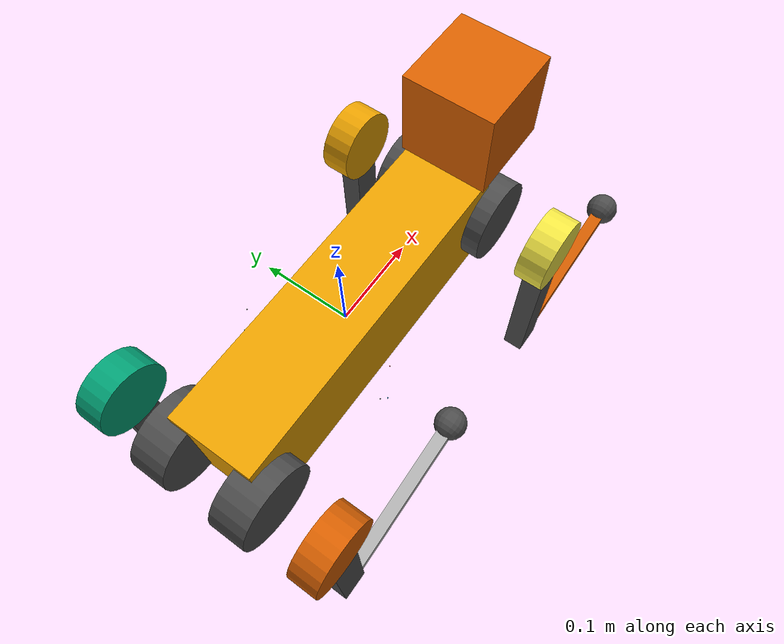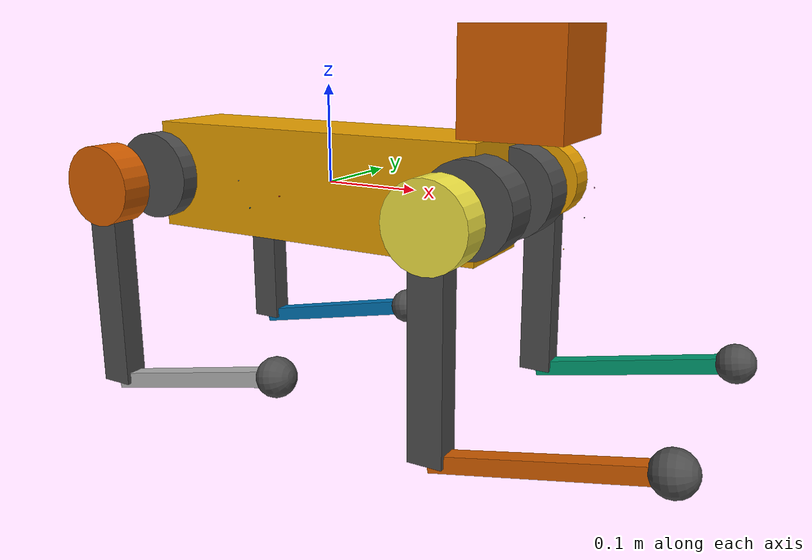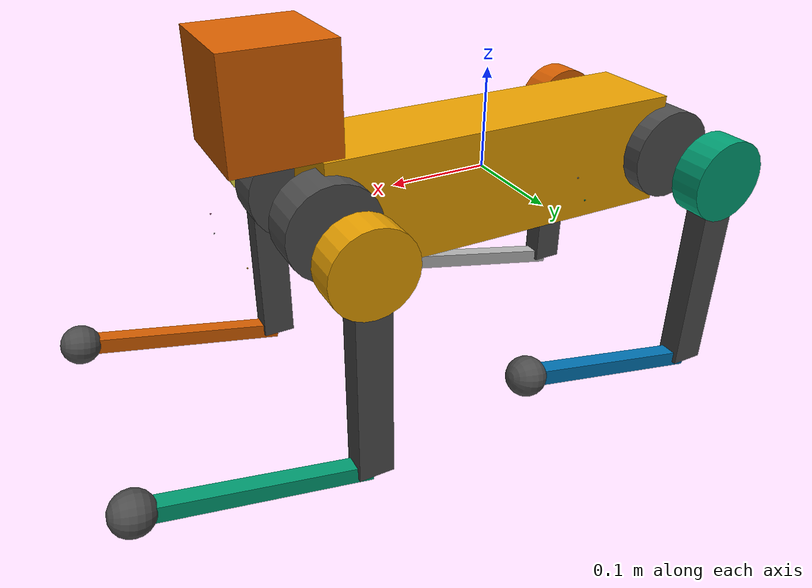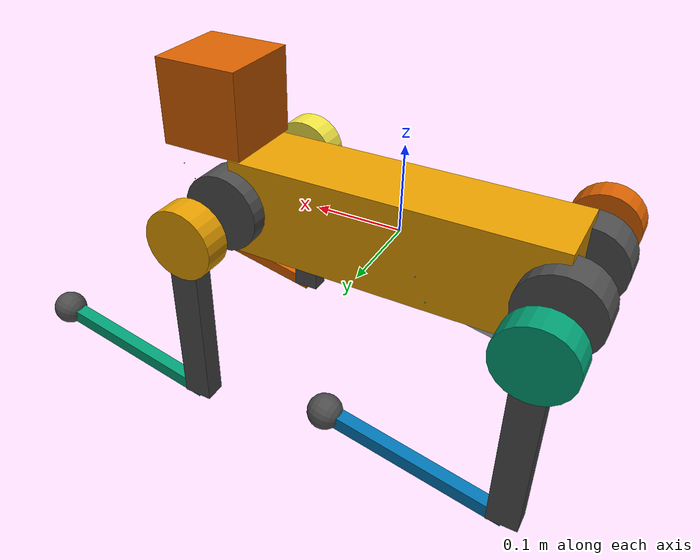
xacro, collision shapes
<?xml version="1.0"?>
<robot name="go1_standalone"
       xmlns:xacro="http://ros.org/wiki/xacro">

  <!-- Defines the kobuki component tag. -->
  <xacro:include filename="$(find go1_description)/urdf/go1.urdf" />

  <!-- Hokuyo Laser -->
  <xacro:include filename="$(find go1_description)/xacro/hokuyo.xacro"/>
  <xacro:laser name="base_scan" parent="trunk" xyz="0.22 0 0.11" rpy="0 0 0" meshes="package://gazebo_plugins/test/multi_robot_scenario/meshes/laser"/>

  <!-- Real Sense -->

</robot>

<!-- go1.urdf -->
<!-- |    This document was autogenerated by xacro from robot.xacro                    | -->
<!-- |    EDITING THIS FILE BY HAND IS NOT RECOMMENDED                                 | -->
<robot name="go1" xmlns:xacro="http://www.ros.org/wiki/xacro">
  <material name="black">
    <color rgba="0.0 0.0 0.0 1.0"/>
  </material>
  <material name="blue">
    <color rgba="0.0 0.0 0.8 1.0"/>
  </material>
  <material name="green">
    <color rgba="0.0 0.8 0.0 1.0"/>
  </material>
  <material name="grey">
    <color rgba="0.2 0.2 0.2 1.0"/>
  </material>
  <material name="silver">
    <color rgba="0.913725490196 0.913725490196 0.847058823529 1.0"/>
  </material>
  <material name="orange">
    <color rgba="1.0 0.423529411765 0.0392156862745 1.0"/>
  </material>
  <material name="brown">
    <color rgba="0.870588235294 0.811764705882 0.764705882353 1.0"/>
  </material>
  <material name="red">
    <color rgba="0.8 0.0 0.0 1.0"/>
  </material>
  <material name="white">
    <color rgba="1.0 1.0 1.0 1.0"/>
  </material>
  <!-- ros_control plugin -->
  <gazebo>
    <plugin filename="libgazebo_ros_control.so" name="gazebo_ros_control">
    </plugin>
  </gazebo>
  <!-- Show the trajectory of trunk center. -->
  <!-- Show the trajectory of foot. You can add another trajectory about another foot. -->
  <gazebo>
    <plugin filename="libgazebo_ros_force.so" name="gazebo_ros_force">
      <bodyName>trunk</bodyName>
      <topicName>/apply_force/trunk</topicName>
    </plugin>
  </gazebo>
  <gazebo reference="imu_link">
    <gravity>true</gravity>
    <sensor name="imu_sensor" type="imu">
      <always_on>true</always_on>
      <update_rate>1000</update_rate>
      <visualize>true</visualize>
      <topic>__default_topic__</topic>
      <plugin filename="libgazebo_ros_imu_sensor.so" name="imu_plugin">
        <frameName>imu_link</frameName>
        <topicName>imu/data</topicName>
        <bodyName>imu_link</bodyName>
        <updateRateHZ>1000.0</updateRateHZ>
        <gaussianNoise>0.0</gaussianNoise>
        <xyzOffset>0 0 0</xyzOffset>
        <rpyOffset>0 0 0</rpyOffset>
        <accelDrift>0.005 0.005 0.005</accelDrift>
        <accelGaussianNoise>0.005 0.005 0.005</accelGaussianNoise>
        <rateDrift>0.005 0.005 0.005 </rateDrift>
        <rateGaussianNoise>0.005 0.005 0.005 </rateGaussianNoise>
        <headingDrift>0.005</headingDrift>
        <headingGaussianNoise>0.005</headingGaussianNoise>
      </plugin>
      <pose>0 0 0 0 0 0</pose>
    </sensor>
  </gazebo>
  <!-- Depth camera -->
  <gazebo reference="depthCamera_link_left">
    <sensor name="camera_link_camera" type="depth">
      <update_rate>20</update_rate>
      <camera>
        <horizontal_fov>1.047198</horizontal_fov>
        <image>
          <width>640</width>
          <height>480</height>
          <format>R8G8B8</format>
        </image>
        <clip>
          <near>0.05</near>
          <far>3</far>
        </clip>
      </camera>
      <plugin filename="libgazebo_ros_openni_kinect.so" name="camera_link_controller">
        <baseline>0.2</baseline>
        <alwaysOn>true</alwaysOn>
        <updateRate>1.0</updateRate>
        <cameraName>camera_link_ir</cameraName>
        <imageTopicName>/camera_link/color/image_raw</imageTopicName>
        <cameraInfoTopicName>/camera_link/color/camera_info</cameraInfoTopicName>
        <depthImageTopicName>/camera_link/depth/image_raw</depthImageTopicName>
        <depthImageInfoTopicName>/camera_link/depth/camera_info</depthImageInfoTopicName>
        <pointCloudTopicName>/camera_link/depth/points</pointCloudTopicName>
        <frameName>depthCamera_link_left</frameName>
        <pointCloudCutoff>0.5</pointCloudCutoff>
        <pointCloudCutoffMax>3.0</pointCloudCutoffMax>
        <distortionK1>0.00000001</distortionK1>
        <distortionK2>0.00000001</distortionK2>
        <distortionK3>0.00000001</distortionK3>
        <distortionT1>0.00000001</distortionT1>
        <distortionT2>0.00000001</distortionT2>
        <CxPrime>0</CxPrime>
        <Cx>0</Cx>
        <Cy>0</Cy>
        <focalLength>0</focalLength>
        <hackBaseline>0</hackBaseline>
      </plugin>
    </sensor>
  </gazebo>
  <!-- Foot contacts. -->
  <gazebo reference="FR_calf">
    <sensor name="FR_foot_contact" type="contact">
      <update_rate>100</update_rate>
      <plugin filename="libunitreeFootContactPlugin.so" name="contactPlugin"/>
      <contact>
        <collision>FR_calf_fixed_joint_lump__FR_foot_collision_1</collision>
      </contact>
    </sensor>
  </gazebo>
  <gazebo reference="FL_calf">
    <sensor name="FL_foot_contact" type="contact">
      <update_rate>100</update_rate>
      <plugin filename="libunitreeFootContactPlugin.so" name="contactPlugin"/>
      <contact>
        <collision>FL_calf_fixed_joint_lump__FL_foot_collision_1</collision>
      </contact>
    </sensor>
  </gazebo>
  <gazebo reference="RR_calf">
    <sensor name="RR_foot_contact" type="contact">
      <update_rate>100</update_rate>
      <plugin filename="libunitreeFootContactPlugin.so" name="contactPlugin"/>
      <contact>
        <collision>RR_calf_fixed_joint_lump__RR_foot_collision_1</collision>
      </contact>
    </sensor>
  </gazebo>
  <gazebo reference="RL_calf">
    <sensor name="RL_foot_contact" type="contact">
      <update_rate>100</update_rate>
      <plugin filename="libunitreeFootContactPlugin.so" name="contactPlugin"/>
      <contact>
        <collision>RL_calf_fixed_joint_lump__RL_foot_collision_1</collision>
      </contact>
    </sensor>
  </gazebo>
  <!-- Visualization of Foot contacts. -->
  <gazebo reference="FR_foot">
    <visual>
      <plugin filename="libunitreeDrawForcePlugin.so" name="drawForcePlugin">
        <topicName>FR_foot_contact</topicName>
      </plugin>
    </visual>
  </gazebo>
  <gazebo reference="FL_foot">
    <visual>
      <plugin filename="libunitreeDrawForcePlugin.so" name="drawForcePlugin">
        <topicName>FL_foot_contact</topicName>
      </plugin>
    </visual>
  </gazebo>
  <gazebo reference="RR_foot">
    <visual>
      <plugin filename="libunitreeDrawForcePlugin.so" name="drawForcePlugin">
        <topicName>RR_foot_contact</topicName>
      </plugin>
    </visual>
  </gazebo>
  <gazebo reference="RL_foot">
    <visual>
      <plugin filename="libunitreeDrawForcePlugin.so" name="drawForcePlugin">
        <topicName>RL_foot_contact</topicName>
      </plugin>
    </visual>
  </gazebo>
  <gazebo reference="base">
    <material>Gazebo/Green</material>
    <turnGravityOff>false</turnGravityOff>
  </gazebo>
  <gazebo reference="trunk">
    <mu1>0.2</mu1>
    <mu2>0.2</mu2>
    <kp value="1000000.0"/>
    <kd value="1.0"/>
  </gazebo>
  <gazebo reference="stick_link">
    <mu1>0.2</mu1>
    <mu2>0.2</mu2>
    <material>Gazebo/White</material>
  </gazebo>
  <gazebo reference="imu_link">
    <mu1>0.2</mu1>
    <mu2>0.2</mu2>
    <material>Gazebo/Red</material>
  </gazebo>
  <!-- FL leg -->
  <gazebo reference="FL_hip">
    <mu1>0.2</mu1>
    <mu2>0.2</mu2>
    <material>Gazebo/DarkGrey</material>
  </gazebo>
  <gazebo reference="FL_thigh">
    <mu1>0.2</mu1>
    <mu2>0.2</mu2>
    <self_collide>1</self_collide>
    <material>Gazebo/DarkGrey</material>
    <kp value="1000000.0"/>
    <kd value="1.0"/>
  </gazebo>
  <gazebo reference="FL_calf">
    <mu1>0.2</mu1>
    <mu2>0.2</mu2>
    <self_collide>1</self_collide>
  </gazebo>
  <gazebo reference="FL_foot">
    <mu1>0.6</mu1>
    <mu2>0.6</mu2>
    <self_collide>1</self_collide>
    <material>Gazebo/DarkGrey</material>
    <kp value="1000000.0"/>
    <kd value="1.0"/>
  </gazebo>
  <!-- FR leg -->
  <gazebo reference="FR_hip">
    <mu1>0.2</mu1>
    <mu2>0.2</mu2>
    <material>Gazebo/DarkGrey</material>
  </gazebo>
  <gazebo reference="FR_thigh">
    <mu1>0.2</mu1>
    <mu2>0.2</mu2>
    <self_collide>1</self_collide>
    <material>Gazebo/DarkGrey</material>
    <kp value="1000000.0"/>
    <kd value="1.0"/>
  </gazebo>
  <gazebo reference="FR_calf">
    <mu1>0.2</mu1>
    <mu2>0.2</mu2>
    <self_collide>1</self_collide>
  </gazebo>
  <gazebo reference="FR_foot">
    <mu1>0.6</mu1>
    <mu2>0.6</mu2>
    <self_collide>1</self_collide>
    <material>Gazebo/DarkGrey</material>
    <kp value="1000000.0"/>
    <kd value="1.0"/>
  </gazebo>
  <!-- RL leg -->
  <gazebo reference="RL_hip">
    <mu1>0.2</mu1>
    <mu2>0.2</mu2>
    <material>Gazebo/DarkGrey</material>
  </gazebo>
  <gazebo reference="RL_thigh">
    <mu1>0.2</mu1>
    <mu2>0.2</mu2>
    <self_collide>1</self_collide>
    <material>Gazebo/DarkGrey</material>
    <kp value="1000000.0"/>
    <kd value="1.0"/>
  </gazebo>
  <gazebo reference="RL_calf">
    <mu1>0.2</mu1>
    <mu2>0.2</mu2>
    <self_collide>1</self_collide>
  </gazebo>
  <gazebo reference="RL_foot">
    <mu1>0.6</mu1>
    <mu2>0.6</mu2>
    <self_collide>1</self_collide>
    <material>Gazebo/DarkGrey</material>
    <kp value="1000000.0"/>
    <kd value="1.0"/>
  </gazebo>
  <!-- RR leg -->
  <gazebo reference="RR_hip">
    <mu1>0.2</mu1>
    <mu2>0.2</mu2>
    <material>Gazebo/DarkGrey</material>
  </gazebo>
  <gazebo reference="RR_thigh">
    <mu1>0.2</mu1>
    <mu2>0.2</mu2>
    <self_collide>1</self_collide>
    <material>Gazebo/DarkGrey</material>
    <kp value="1000000.0"/>
    <kd value="1.0"/>
  </gazebo>
  <gazebo reference="RR_calf">
    <mu1>0.2</mu1>
    <mu2>0.2</mu2>
    <self_collide>1</self_collide>
  </gazebo>
  <gazebo reference="RR_foot">
    <mu1>0.6</mu1>
    <mu2>0.6</mu2>
    <self_collide>1</self_collide>
    <material>Gazebo/DarkGrey</material>
    <kp value="1000000.0"/>
    <kd value="1.0"/>
  </gazebo>
  <!-- Debug mode will hung up the robot, use "true" or "false" to switch it. -->
  <link name="trunk">
    <visual>
      <origin rpy="0 0 0" xyz="0 0 0"/>
      <geometry>
        <mesh filename="package://go1_description/meshes/trunk.dae" scale="1 1 1"/>
      </geometry>
    </visual>
    <collision>
      <origin rpy="0 0 0" xyz="0 0 0"/>
      <geometry>
        <box size="0.3762 0.0935 0.114"/>
      </geometry>
    </collision>
    <inertial>
      <origin rpy="0 0 0" xyz="0.0223 0.002 -0.0005"/>
      <mass value="5.204"/>
      <inertia ixx="0.0168352186" ixy="0.0004636141" ixz="0.0002367952" iyy="0.0656071082" iyz="3.6671e-05" izz="0.0742720659"/>
    </inertial>
  </link>
  <joint name="imu_joint" type="fixed">
    <parent link="trunk"/>
    <child link="imu_link"/>
    <origin rpy="0 0 0" xyz="-0.01592 -0.06659 -0.00617"/>
  </joint>
  <link name="imu_link">
    <inertial>
      <mass value="0.001"/>
      <origin rpy="0 0 0" xyz="0 0 0"/>
      <inertia ixx="0.0001" ixy="0" ixz="0" iyy="0.0001" iyz="0" izz="0.0001"/>
    </inertial>
    <visual>
      <origin rpy="0 0 0" xyz="0 0 0"/>
      <geometry>
        <box size="0.001 0.001 0.001"/>
      </geometry>
    </visual>
    <collision>
      <origin rpy="0 0 0" xyz="0 0 0"/>
      <geometry>
        <box size=".001 .001 .001"/>
      </geometry>
    </collision>
  </link>
  <joint name="FR_hip_joint" type="revolute">
    <origin rpy="0 0 0" xyz="0.1881 -0.04675 0"/>
    <parent link="trunk"/>
    <child link="FR_hip"/>
    <axis xyz="1 0 0"/>
    <dynamics damping="0.01" friction="0.2"/>
    <limit effort="23.7" lower="-1.0471975512" upper="1.0471975512" velocity="30.1"/>
  </joint>
  <link name="FR_hip">
    <visual>
      <origin rpy="3.14159265359 0 0" xyz="0 0 0"/>
      <geometry>
        <mesh filename="package://go1_description/meshes/hip.dae" scale="1 1 1"/>
      </geometry>
    </visual>
    <collision>
      <origin rpy="1.57079632679 0 0" xyz="0 0 0"/>
      <geometry>
        <cylinder length="0.04" radius="0.046"/>
      </geometry>
    </collision>
    <inertial>
      <origin rpy="0 0 0" xyz="-0.00541 0.00074 6e-06"/>
      <mass value="0.591"/>
      <inertia ixx="0.000374268192" ixy="-3.6844422e-05" ixz="-9.86754e-07" iyy="0.000635923669" iyz="1.172894e-06" izz="0.000457647394"/>
    </inertial>
  </link>
  <joint name="FR_hip_fixed" type="fixed">
    <origin rpy="0 0 0" xyz="0 -0.08 0"/>
    <parent link="FR_hip"/>
    <child link="FR_thigh_shoulder"/>
  </joint>
  <!-- this link is only for collision -->
  <link name="FR_thigh_shoulder">
    <collision>
      <origin rpy="1.57079632679 0 0" xyz="0 0 0"/>
      <geometry>
        <cylinder length="0.032" radius="0.041"/>
      </geometry>
    </collision>
  </link>
  <joint name="FR_thigh_joint" type="revolute">
    <origin rpy="0 0 0" xyz="0 -0.08 0"/>
    <parent link="FR_hip"/>
    <child link="FR_thigh"/>
    <axis xyz="0 1 0"/>
    <dynamics damping="0.01" friction="0.2"/>
    <limit effort="23.7" lower="-0.663225115758" upper="2.96705972839" velocity="30.1"/>
  </joint>
  <link name="FR_thigh">
    <visual>
      <origin rpy="0 0 0" xyz="0 0 0"/>
      <geometry>
        <mesh filename="package://go1_description/meshes/thigh_mirror.dae" scale="1 1 1"/>
      </geometry>
    </visual>
    <collision>
      <origin rpy="0 1.57079632679 0" xyz="0 0 -0.1065"/>
      <geometry>
        <box size="0.213 0.0245 0.034"/>
      </geometry>
    </collision>
    <inertial>
      <origin rpy="0 0 0" xyz="-0.003468 0.018947 -0.032736"/>
      <mass value="0.92"/>
      <inertia ixx="0.005851561134" ixy="-1.783284e-06" ixz="0.000328291374" iyy="0.005596155105" iyz="-2.1430713e-05" izz="0.00107157026"/>
    </inertial>
  </link>
  <joint name="FR_calf_joint" type="revolute">
    <origin rpy="0 0 0" xyz="0 0 -0.213"/>
    <parent link="FR_thigh"/>
    <child link="FR_calf"/>
    <axis xyz="0 1 0"/>
    <dynamics damping="0.01" friction="0.2"/>
    <limit effort="23.7" lower="-2.72271363311" upper="-0.837758040957" velocity="30.1"/>
  </joint>
  <link name="FR_calf">
    <visual>
      <origin rpy="0 0 0" xyz="0 0 0"/>
      <geometry>
        <mesh filename="package://go1_description/meshes/calf.dae" scale="1 1 1"/>
      </geometry>
    </visual>
    <collision>
      <origin rpy="0 1.57079632679 0" xyz="0 0 -0.1065"/>
      <geometry>
        <box size="0.213 0.016 0.016"/>
      </geometry>
    </collision>
    <inertial>
      <origin rpy="0 0 0" xyz="0.006286 0.001307 -0.122269"/>
      <mass value="0.131"/>
      <inertia ixx="0.002939186297" ixy="1.440899e-06" ixz="-0.00010535955" iyy="0.00295576935" iyz="-2.4397752e-05" izz="3.0273372e-05"/>
    </inertial>
  </link>
  <joint name="FR_foot_fixed" type="fixed">
    <origin rpy="0 0 0" xyz="0 0 -0.213"/>
    <parent link="FR_calf"/>
    <child link="FR_foot"/>
  </joint>
  <link name="FR_foot">
    <visual>
      <origin rpy="0 0 0" xyz="0 0 0"/>
      <geometry>
        <sphere radius="0.01"/>
      </geometry>
    </visual>
    <collision>
      <origin rpy="0 0 0" xyz="0 0 0"/>
      <geometry>
        <sphere radius="0.02"/>
      </geometry>
    </collision>
    <inertial>
      <mass value="0.06"/>
      <inertia ixx="9.6e-06" ixy="0.0" ixz="0.0" iyy="9.6e-06" iyz="0.0" izz="9.6e-06"/>
    </inertial>
  </link>
  <transmission name="FR_hip_tran">
    <type>transmission_interface/SimpleTransmission</type>
    <joint name="FR_hip_joint">
      <hardwareInterface>hardware_interface/EffortJointInterface</hardwareInterface>
    </joint>
    <actuator name="FR_hip_motor">
      <hardwareInterface>hardware_interface/EffortJointInterface</hardwareInterface>
      <mechanicalReduction>1</mechanicalReduction>
    </actuator>
  </transmission>
  <transmission name="FR_thigh_tran">
    <type>transmission_interface/SimpleTransmission</type>
    <joint name="FR_thigh_joint">
      <hardwareInterface>hardware_interface/EffortJointInterface</hardwareInterface>
    </joint>
    <actuator name="FR_thigh_motor">
      <hardwareInterface>hardware_interface/EffortJointInterface</hardwareInterface>
      <mechanicalReduction>1</mechanicalReduction>
    </actuator>
  </transmission>
  <transmission name="FR_calf_tran">
    <type>transmission_interface/SimpleTransmission</type>
    <joint name="FR_calf_joint">
      <hardwareInterface>hardware_interface/EffortJointInterface</hardwareInterface>
    </joint>
    <actuator name="FR_calf_motor">
      <hardwareInterface>hardware_interface/EffortJointInterface</hardwareInterface>
      <mechanicalReduction>1</mechanicalReduction>
    </actuator>
  </transmission>
  <joint name="FL_hip_joint" type="revolute">
    <origin rpy="0 0 0" xyz="0.1881 0.04675 0"/>
    <parent link="trunk"/>
    <child link="FL_hip"/>
    <axis xyz="1 0 0"/>
    <dynamics damping="0.01" friction="0.2"/>
    <limit effort="23.7" lower="-1.0471975512" upper="1.0471975512" velocity="30.1"/>
  </joint>
  <link name="FL_hip">
    <visual>
      <origin rpy="0 0 0" xyz="0 0 0"/>
      <geometry>
        <mesh filename="package://go1_description/meshes/hip.dae" scale="1 1 1"/>
      </geometry>
    </visual>
    <collision>
      <origin rpy="1.57079632679 0 0" xyz="0 0 0"/>
      <geometry>
        <cylinder length="0.04" radius="0.046"/>
      </geometry>
    </collision>
    <inertial>
      <origin rpy="0 0 0" xyz="-0.00541 -0.00074 6e-06"/>
      <mass value="0.591"/>
      <inertia ixx="0.000374268192" ixy="3.6844422e-05" ixz="-9.86754e-07" iyy="0.000635923669" iyz="-1.172894e-06" izz="0.000457647394"/>
    </inertial>
  </link>
  <joint name="FL_hip_fixed" type="fixed">
    <origin rpy="0 0 0" xyz="0 0.08 0"/>
    <parent link="FL_hip"/>
    <child link="FL_thigh_shoulder"/>
  </joint>
  <!-- this link is only for collision -->
  <link name="FL_thigh_shoulder">
    <collision>
      <origin rpy="1.57079632679 0 0" xyz="0 0 0"/>
      <geometry>
        <cylinder length="0.032" radius="0.041"/>
      </geometry>
    </collision>
  </link>
  <joint name="FL_thigh_joint" type="revolute">
    <origin rpy="0 0 0" xyz="0 0.08 0"/>
    <parent link="FL_hip"/>
    <child link="FL_thigh"/>
    <axis xyz="0 1 0"/>
    <dynamics damping="0.01" friction="0.2"/>
    <limit effort="23.7" lower="-0.663225115758" upper="2.96705972839" velocity="30.1"/>
  </joint>
  <link name="FL_thigh">
    <visual>
      <origin rpy="0 0 0" xyz="0 0 0"/>
      <geometry>
        <mesh filename="package://go1_description/meshes/thigh.dae" scale="1 1 1"/>
      </geometry>
    </visual>
    <collision>
      <origin rpy="0 1.57079632679 0" xyz="0 0 -0.1065"/>
      <geometry>
        <box size="0.213 0.0245 0.034"/>
      </geometry>
    </collision>
    <inertial>
      <origin rpy="0 0 0" xyz="-0.003468 -0.018947 -0.032736"/>
      <mass value="0.92"/>
      <inertia ixx="0.005851561134" ixy="1.783284e-06" ixz="0.000328291374" iyy="0.005596155105" iyz="2.1430713e-05" izz="0.00107157026"/>
    </inertial>
  </link>
  <joint name="FL_calf_joint" type="revolute">
    <origin rpy="0 0 0" xyz="0 0 -0.213"/>
    <parent link="FL_thigh"/>
    <child link="FL_calf"/>
    <axis xyz="0 1 0"/>
    <dynamics damping="0.01" friction="0.2"/>
    <limit effort="23.7" lower="-2.72271363311" upper="-0.837758040957" velocity="30.1"/>
  </joint>
  <link name="FL_calf">
    <visual>
      <origin rpy="0 0 0" xyz="0 0 0"/>
      <geometry>
        <mesh filename="package://go1_description/meshes/calf.dae" scale="1 1 1"/>
      </geometry>
    </visual>
    <collision>
      <origin rpy="0 1.57079632679 0" xyz="0 0 -0.1065"/>
      <geometry>
        <box size="0.213 0.016 0.016"/>
      </geometry>
    </collision>
    <inertial>
      <origin rpy="0 0 0" xyz="0.006286 0.001307 -0.122269"/>
      <mass value="0.131"/>
      <inertia ixx="0.002939186297" ixy="1.440899e-06" ixz="-0.00010535955" iyy="0.00295576935" iyz="-2.4397752e-05" izz="3.0273372e-05"/>
    </inertial>
  </link>
  <joint name="FL_foot_fixed" type="fixed">
    <origin rpy="0 0 0" xyz="0 0 -0.213"/>
    <parent link="FL_calf"/>
    <child link="FL_foot"/>
  </joint>
  <link name="FL_foot">
    <visual>
      <origin rpy="0 0 0" xyz="0 0 0"/>
      <geometry>
        <sphere radius="0.01"/>
      </geometry>
    </visual>
    <collision>
      <origin rpy="0 0 0" xyz="0 0 0"/>
      <geometry>
        <sphere radius="0.02"/>
      </geometry>
    </collision>
    <inertial>
      <mass value="0.06"/>
      <inertia ixx="9.6e-06" ixy="0.0" ixz="0.0" iyy="9.6e-06" iyz="0.0" izz="9.6e-06"/>
    </inertial>
  </link>
  <transmission name="FL_hip_tran">
    <type>transmission_interface/SimpleTransmission</type>
    <joint name="FL_hip_joint">
      <hardwareInterface>hardware_interface/EffortJointInterface</hardwareInterface>
    </joint>
    <actuator name="FL_hip_motor">
      <hardwareInterface>hardware_interface/EffortJointInterface</hardwareInterface>
      <mechanicalReduction>1</mechanicalReduction>
    </actuator>
  </transmission>
  <transmission name="FL_thigh_tran">
    <type>transmission_interface/SimpleTransmission</type>
    <joint name="FL_thigh_joint">
      <hardwareInterface>hardware_interface/EffortJointInterface</hardwareInterface>
    </joint>
    <actuator name="FL_thigh_motor">
      <hardwareInterface>hardware_interface/EffortJointInterface</hardwareInterface>
      <mechanicalReduction>1</mechanicalReduction>
    </actuator>
  </transmission>
  <transmission name="FL_calf_tran">
    <type>transmission_interface/SimpleTransmission</type>
    <joint name="FL_calf_joint">
      <hardwareInterface>hardware_interface/EffortJointInterface</hardwareInterface>
    </joint>
    <actuator name="FL_calf_motor">
      <hardwareInterface>hardware_interface/EffortJointInterface</hardwareInterface>
      <mechanicalReduction>1</mechanicalReduction>
    </actuator>
  </transmission>
  <joint name="RR_hip_joint" type="revolute">
    <origin rpy="0 0 0" xyz="-0.1881 -0.04675 0"/>
    <parent link="trunk"/>
    <child link="RR_hip"/>
    <axis xyz="1 0 0"/>
    <dynamics damping="0.01" friction="0.2"/>
    <limit effort="23.7" lower="-1.0471975512" upper="1.0471975512" velocity="30.1"/>
  </joint>
  <link name="RR_hip">
    <visual>
      <origin rpy="3.14159265359 3.14159265359 0" xyz="0 0 0"/>
      <geometry>
        <mesh filename="package://go1_description/meshes/hip.dae" scale="1 1 1"/>
      </geometry>
    </visual>
    <collision>
      <origin rpy="1.57079632679 0 0" xyz="0 0 0"/>
      <geometry>
        <cylinder length="0.04" radius="0.046"/>
      </geometry>
    </collision>
    <inertial>
      <origin rpy="0 0 0" xyz="0.00541 0.00074 6e-06"/>
      <mass value="0.591"/>
      <inertia ixx="0.000374268192" ixy="3.6844422e-05" ixz="9.86754e-07" iyy="0.000635923669" iyz="1.172894e-06" izz="0.000457647394"/>
    </inertial>
  </link>
  <joint name="RR_hip_fixed" type="fixed">
    <origin rpy="0 0 0" xyz="0 -0.08 0"/>
    <parent link="RR_hip"/>
    <child link="RR_thigh_shoulder"/>
  </joint>
  <!-- this link is only for collision -->
  <link name="RR_thigh_shoulder">
    <collision>
      <origin rpy="1.57079632679 0 0" xyz="0 0 0"/>
      <geometry>
        <cylinder length="0.032" radius="0.041"/>
      </geometry>
    </collision>
  </link>
  <joint name="RR_thigh_joint" type="revolute">
    <origin rpy="0 0 0" xyz="0 -0.08 0"/>
    <parent link="RR_hip"/>
    <child link="RR_thigh"/>
    <axis xyz="0 1 0"/>
    <dynamics damping="0.01" friction="0.2"/>
    <limit effort="23.7" lower="-0.663225115758" upper="2.96705972839" velocity="30.1"/>
  </joint>
  <link name="RR_thigh">
    <visual>
      <origin rpy="0 0 0" xyz="0 0 0"/>
      <geometry>
        <mesh filename="package://go1_description/meshes/thigh_mirror.dae" scale="1 1 1"/>
      </geometry>
    </visual>
    <collision>
      <origin rpy="0 1.57079632679 0" xyz="0 0 -0.1065"/>
      <geometry>
        <box size="0.213 0.0245 0.034"/>
      </geometry>
    </collision>
    <inertial>
      <origin rpy="0 0 0" xyz="-0.003468 0.018947 -0.032736"/>
      <mass value="0.92"/>
      <inertia ixx="0.005851561134" ixy="-1.783284e-06" ixz="0.000328291374" iyy="0.005596155105" iyz="-2.1430713e-05" izz="0.00107157026"/>
    </inertial>
  </link>
  <joint name="RR_calf_joint" type="revolute">
    <origin rpy="0 0 0" xyz="0 0 -0.213"/>
    <parent link="RR_thigh"/>
    <child link="RR_calf"/>
    <axis xyz="0 1 0"/>
    <dynamics damping="0.01" friction="0.2"/>
    <limit effort="23.7" lower="-2.72271363311" upper="-0.837758040957" velocity="30.1"/>
  </joint>
  <link name="RR_calf">
    <visual>
      <origin rpy="0 0 0" xyz="0 0 0"/>
      <geometry>
        <mesh filename="package://go1_description/meshes/calf.dae" scale="1 1 1"/>
      </geometry>
    </visual>
    <collision>
      <origin rpy="0 1.57079632679 0" xyz="0 0 -0.1065"/>
      <geometry>
        <box size="0.213 0.016 0.016"/>
      </geometry>
    </collision>
    <inertial>
      <origin rpy="0 0 0" xyz="0.006286 0.001307 -0.122269"/>
      <mass value="0.131"/>
      <inertia ixx="0.002939186297" ixy="1.440899e-06" ixz="-0.00010535955" iyy="0.00295576935" iyz="-2.4397752e-05" izz="3.0273372e-05"/>
    </inertial>
  </link>
  <joint name="RR_foot_fixed" type="fixed">
    <origin rpy="0 0 0" xyz="0 0 -0.213"/>
    <parent link="RR_calf"/>
    <child link="RR_foot"/>
  </joint>
  <link name="RR_foot">
    <visual>
      <origin rpy="0 0 0" xyz="0 0 0"/>
      <geometry>
        <sphere radius="0.01"/>
      </geometry>
    </visual>
    <collision>
      <origin rpy="0 0 0" xyz="0 0 0"/>
      <geometry>
        <sphere radius="0.02"/>
      </geometry>
    </collision>
    <inertial>
      <mass value="0.06"/>
      <inertia ixx="9.6e-06" ixy="0.0" ixz="0.0" iyy="9.6e-06" iyz="0.0" izz="9.6e-06"/>
    </inertial>
  </link>
  <transmission name="RR_hip_tran">
    <type>transmission_interface/SimpleTransmission</type>
    <joint name="RR_hip_joint">
      <hardwareInterface>hardware_interface/EffortJointInterface</hardwareInterface>
    </joint>
    <actuator name="RR_hip_motor">
      <hardwareInterface>hardware_interface/EffortJointInterface</hardwareInterface>
      <mechanicalReduction>1</mechanicalReduction>
    </actuator>
  </transmission>
  <transmission name="RR_thigh_tran">
    <type>transmission_interface/SimpleTransmission</type>
    <joint name="RR_thigh_joint">
      <hardwareInterface>hardware_interface/EffortJointInterface</hardwareInterface>
    </joint>
    <actuator name="RR_thigh_motor">
      <hardwareInterface>hardware_interface/EffortJointInterface</hardwareInterface>
      <mechanicalReduction>1</mechanicalReduction>
    </actuator>
  </transmission>
  <transmission name="RR_calf_tran">
    <type>transmission_interface/SimpleTransmission</type>
    <joint name="RR_calf_joint">
      <hardwareInterface>hardware_interface/EffortJointInterface</hardwareInterface>
    </joint>
    <actuator name="RR_calf_motor">
      <hardwareInterface>hardware_interface/EffortJointInterface</hardwareInterface>
      <mechanicalReduction>1</mechanicalReduction>
    </actuator>
  </transmission>
  <joint name="RL_hip_joint" type="revolute">
    <origin rpy="0 0 0" xyz="-0.1881 0.04675 0"/>
    <parent link="trunk"/>
    <child link="RL_hip"/>
    <axis xyz="1 0 0"/>
    <dynamics damping="0.01" friction="0.2"/>
    <limit effort="23.7" lower="-1.0471975512" upper="1.0471975512" velocity="30.1"/>
  </joint>
  <link name="RL_hip">
    <visual>
      <origin rpy="0 3.14159265359 0" xyz="0 0 0"/>
      <geometry>
        <mesh filename="package://go1_description/meshes/hip.dae" scale="1 1 1"/>
      </geometry>
    </visual>
    <collision>
      <origin rpy="1.57079632679 0 0" xyz="0 0 0"/>
      <geometry>
        <cylinder length="0.04" radius="0.046"/>
      </geometry>
    </collision>
    <inertial>
      <origin rpy="0 0 0" xyz="0.00541 -0.00074 6e-06"/>
      <mass value="0.591"/>
      <inertia ixx="0.000374268192" ixy="-3.6844422e-05" ixz="9.86754e-07" iyy="0.000635923669" iyz="-1.172894e-06" izz="0.000457647394"/>
    </inertial>
  </link>
  <joint name="RL_hip_fixed" type="fixed">
    <origin rpy="0 0 0" xyz="0 0.08 0"/>
    <parent link="RL_hip"/>
    <child link="RL_thigh_shoulder"/>
  </joint>
  <!-- this link is only for collision -->
  <link name="RL_thigh_shoulder">
    <collision>
      <origin rpy="1.57079632679 0 0" xyz="0 0 0"/>
      <geometry>
        <cylinder length="0.032" radius="0.041"/>
      </geometry>
    </collision>
  </link>
  <joint name="RL_thigh_joint" type="revolute">
    <origin rpy="0 0 0" xyz="0 0.08 0"/>
    <parent link="RL_hip"/>
    <child link="RL_thigh"/>
    <axis xyz="0 1 0"/>
    <dynamics damping="0.01" friction="0.2"/>
    <limit effort="23.7" lower="-0.663225115758" upper="2.96705972839" velocity="30.1"/>
  </joint>
  <link name="RL_thigh">
    <visual>
      <origin rpy="0 0 0" xyz="0 0 0"/>
      <geometry>
        <mesh filename="package://go1_description/meshes/thigh.dae" scale="1 1 1"/>
      </geometry>
    </visual>
    <collision>
      <origin rpy="0 1.57079632679 0" xyz="0 0 -0.1065"/>
      <geometry>
        <box size="0.213 0.0245 0.034"/>
      </geometry>
    </collision>
    <inertial>
      <origin rpy="0 0 0" xyz="-0.003468 -0.018947 -0.032736"/>
      <mass value="0.92"/>
      <inertia ixx="0.005851561134" ixy="1.783284e-06" ixz="0.000328291374" iyy="0.005596155105" iyz="2.1430713e-05" izz="0.00107157026"/>
    </inertial>
  </link>
  <joint name="RL_calf_joint" type="revolute">
    <origin rpy="0 0 0" xyz="0 0 -0.213"/>
    <parent link="RL_thigh"/>
    <child link="RL_calf"/>
    <axis xyz="0 1 0"/>
    <dynamics damping="0.01" friction="0.2"/>
    <limit effort="23.7" lower="-2.72271363311" upper="-0.837758040957" velocity="30.1"/>
  </joint>
  <link name="RL_calf">
    <visual>
      <origin rpy="0 0 0" xyz="0 0 0"/>
      <geometry>
        <mesh filename="package://go1_description/meshes/calf.dae" scale="1 1 1"/>
      </geometry>
    </visual>
    <collision>
      <origin rpy="0 1.57079632679 0" xyz="0 0 -0.1065"/>
      <geometry>
        <box size="0.213 0.016 0.016"/>
      </geometry>
    </collision>
    <inertial>
      <origin rpy="0 0 0" xyz="0.006286 0.001307 -0.122269"/>
      <mass value="0.131"/>
      <inertia ixx="0.002939186297" ixy="1.440899e-06" ixz="-0.00010535955" iyy="0.00295576935" iyz="-2.4397752e-05" izz="3.0273372e-05"/>
    </inertial>
  </link>
  <joint name="RL_foot_fixed" type="fixed">
    <origin rpy="0 0 0" xyz="0 0 -0.213"/>
    <parent link="RL_calf"/>
    <child link="RL_foot"/>
  </joint>
  <link name="RL_foot">
    <visual>
      <origin rpy="0 0 0" xyz="0 0 0"/>
      <geometry>
        <sphere radius="0.01"/>
      </geometry>
    </visual>
    <collision>
      <origin rpy="0 0 0" xyz="0 0 0"/>
      <geometry>
        <sphere radius="0.02"/>
      </geometry>
    </collision>
    <inertial>
      <mass value="0.06"/>
      <inertia ixx="9.6e-06" ixy="0.0" ixz="0.0" iyy="9.6e-06" iyz="0.0" izz="9.6e-06"/>
    </inertial>
  </link>
  <transmission name="RL_hip_tran">
    <type>transmission_interface/SimpleTransmission</type>
    <joint name="RL_hip_joint">
      <hardwareInterface>hardware_interface/EffortJointInterface</hardwareInterface>
    </joint>
    <actuator name="RL_hip_motor">
      <hardwareInterface>hardware_interface/EffortJointInterface</hardwareInterface>
      <mechanicalReduction>1</mechanicalReduction>
    </actuator>
  </transmission>
  <transmission name="RL_thigh_tran">
    <type>transmission_interface/SimpleTransmission</type>
    <joint name="RL_thigh_joint">
      <hardwareInterface>hardware_interface/EffortJointInterface</hardwareInterface>
    </joint>
    <actuator name="RL_thigh_motor">
      <hardwareInterface>hardware_interface/EffortJointInterface</hardwareInterface>
      <mechanicalReduction>1</mechanicalReduction>
    </actuator>
  </transmission>
  <transmission name="RL_calf_tran">
    <type>transmission_interface/SimpleTransmission</type>
    <joint name="RL_calf_joint">
      <hardwareInterface>hardware_interface/EffortJointInterface</hardwareInterface>
    </joint>
    <actuator name="RL_calf_motor">
      <hardwareInterface>hardware_interface/EffortJointInterface</hardwareInterface>
      <mechanicalReduction>1</mechanicalReduction>
    </actuator>
  </transmission>
  <joint name="camera_joint_face" type="fixed">
    <origin rpy="3.14159265359 0 0" xyz="0.2785 0.0125 0.0167"/>
    <parent link="trunk"/>
    <child link="camera_face"/>
  </joint>
  <link name="camera_face">
    <collision>
      <origin rpy="0 0 0" xyz="0 0 0"/>
      <geometry>
        <box size=".001 .001 .001"/>
      </geometry>
    </collision>
    <visual>
      <origin rpy="0 0 0" xyz="0 0 0"/>
      <geometry>
        <mesh filename="package://go1_description/meshes/depthCamera.dae" scale="1 1 1"/>
      </geometry>
    </visual>
    <inertial>
      <mass value="1e-5"/>
      <origin rpy="0 0 0" xyz="0 0 0"/>
      <inertia ixx="1e-6" ixy="0" ixz="0" iyy="1e-6" iyz="0" izz="1e-6"/>
    </inertial>
  </link>
  <joint name="camera_optical_joint_face" type="fixed">
    <origin rpy="-1.57079632679 0 -1.57079632679" xyz="0 0 0"/>
    <parent link="camera_face"/>
    <child link="camera_optical_face"/>
  </joint>
  <link name="camera_optical_face">
        </link>
  <gazebo reference="camera_face">
    <sensor name="camera_face_camera" type="depth">
      <update_rate>16</update_rate>
      <camera>
        <horizontal_fov>2.094</horizontal_fov>
        <image>
          <width>928</width>
          <height>800</height>
          <format>R8G8B8</format>
        </image>
        <clip>
          <near>0.1</near>
          <far>5</far>
        </clip>
      </camera>
      <plugin filename="libgazebo_ros_openni_kinect.so" name="camera_face_controller">
        <baseline>0.025</baseline>
        <alwaysOn>true</alwaysOn>
        <updateRate>0.0</updateRate>
        <cameraName>camera_face_ir</cameraName>
        <imageTopicName>/camera_face/color/image_raw</imageTopicName>
        <cameraInfoTopicName>/camera_face/color/camera_info</cameraInfoTopicName>
        <depthImageTopicName>/camera_face/depth/image_raw</depthImageTopicName>
        <depthImageInfoTopicName>/camera_face/depth/camera_info</depthImageInfoTopicName>
        <pointCloudTopicName>/cam1/point_cloud_face</pointCloudTopicName>
        <frameName>camera_optical_face</frameName>
        <pointCloudCutoff>0.1</pointCloudCutoff>
        <pointCloudCutoffMax>1.5</pointCloudCutoffMax>
        <distortionK1>0.0</distortionK1>
        <distortionK2>0.0</distortionK2>
        <distortionK3>0.0</distortionK3>
        <distortionT1>0.0</distortionT1>
        <distortionT2>0.0</distortionT2>
        <CxPrime>0</CxPrime>
        <Cx>0.0045</Cx>
        <Cy>0.0039</Cy>
        <focalLength>0</focalLength>
        <hackBaseline>0</hackBaseline>
      </plugin>
    </sensor>
  </gazebo>
  <joint name="camera_joint_chin" type="fixed">
    <origin rpy="3.14159265359 1.57079632679 0" xyz="0.2522 0.0125 -0.0436"/>
    <parent link="trunk"/>
    <child link="camera_chin"/>
  </joint>
  <link name="camera_chin">
    <collision>
      <origin rpy="0 0 0" xyz="0 0 0"/>
      <geometry>
        <box size=".001 .001 .001"/>
      </geometry>
    </collision>
    <visual>
      <origin rpy="0 0 0" xyz="0 0 0"/>
      <geometry>
        <mesh filename="package://go1_description/meshes/depthCamera.dae" scale="1 1 1"/>
      </geometry>
    </visual>
    <inertial>
      <mass value="1e-5"/>
      <origin rpy="0 0 0" xyz="0 0 0"/>
      <inertia ixx="1e-6" ixy="0" ixz="0" iyy="1e-6" iyz="0" izz="1e-6"/>
    </inertial>
  </link>
  <joint name="camera_optical_joint_chin" type="fixed">
    <origin rpy="-1.57079632679 0 -1.57079632679" xyz="0 0 0"/>
    <parent link="camera_chin"/>
    <child link="camera_optical_chin"/>
  </joint>
  <link name="camera_optical_chin">
        </link>
  <gazebo reference="camera_chin">
    <sensor name="camera_chin_camera" type="depth">
      <update_rate>16</update_rate>
      <camera>
        <horizontal_fov>2.094</horizontal_fov>
        <image>
          <width>928</width>
          <height>800</height>
          <format>R8G8B8</format>
        </image>
        <clip>
          <near>0.1</near>
          <far>5</far>
        </clip>
      </camera>
      <plugin filename="libgazebo_ros_openni_kinect.so" name="camera_chin_controller">
        <baseline>0.025</baseline>
        <alwaysOn>true</alwaysOn>
        <updateRate>0.0</updateRate>
        <cameraName>camera_chin_ir</cameraName>
        <imageTopicName>/camera_chin/color/image_raw</imageTopicName>
        <cameraInfoTopicName>/camera_chin/color/camera_info</cameraInfoTopicName>
        <depthImageTopicName>/camera_chin/depth/image_raw</depthImageTopicName>
        <depthImageInfoTopicName>/camera_chin/depth/camera_info</depthImageInfoTopicName>
        <pointCloudTopicName>/cam2/point_cloud_chin</pointCloudTopicName>
        <frameName>camera_optical_chin</frameName>
        <pointCloudCutoff>0.1</pointCloudCutoff>
        <pointCloudCutoffMax>1.5</pointCloudCutoffMax>
        <distortionK1>0.0</distortionK1>
        <distortionK2>0.0</distortionK2>
        <distortionK3>0.0</distortionK3>
        <distortionT1>0.0</distortionT1>
        <distortionT2>0.0</distortionT2>
        <CxPrime>0</CxPrime>
        <Cx>0.0045</Cx>
        <Cy>0.0039</Cy>
        <focalLength>0</focalLength>
        <hackBaseline>0</hackBaseline>
      </plugin>
    </sensor>
  </gazebo>
  <joint name="camera_joint_left" type="fixed">
    <origin rpy="3.14159265359 0.2618 1.57079632679" xyz="-0.066 0.082 -0.0176"/>
    <parent link="trunk"/>
    <child link="camera_left"/>
  </joint>
  <link name="camera_left">
    <collision>
      <origin rpy="0 0 0" xyz="0 0 0"/>
      <geometry>
        <box size=".001 .001 .001"/>
      </geometry>
    </collision>
    <visual>
      <origin rpy="0 0 0" xyz="0 0 0"/>
      <geometry>
        <mesh filename="package://go1_description/meshes/depthCamera.dae" scale="1 1 1"/>
      </geometry>
    </visual>
    <inertial>
      <mass value="1e-5"/>
      <origin rpy="0 0 0" xyz="0 0 0"/>
      <inertia ixx="1e-6" ixy="0" ixz="0" iyy="1e-6" iyz="0" izz="1e-6"/>
    </inertial>
  </link>
  <joint name="camera_optical_joint_left" type="fixed">
    <origin rpy="-1.57079632679 0 -1.57079632679" xyz="0 0 0"/>
    <parent link="camera_left"/>
    <child link="camera_optical_left"/>
  </joint>
  <link name="camera_optical_left">
        </link>
  <gazebo reference="camera_left">
    <sensor name="camera_left_camera" type="depth">
      <update_rate>16</update_rate>
      <camera>
        <horizontal_fov>2.094</horizontal_fov>
        <image>
          <width>928</width>
          <height>800</height>
          <format>R8G8B8</format>
        </image>
        <clip>
          <near>0.1</near>
          <far>5</far>
        </clip>
      </camera>
      <plugin filename="libgazebo_ros_openni_kinect.so" name="camera_left_controller">
        <baseline>0.025</baseline>
        <alwaysOn>true</alwaysOn>
        <updateRate>0.0</updateRate>
        <cameraName>camera_left_ir</cameraName>
        <imageTopicName>/camera_left/color/image_raw</imageTopicName>
        <cameraInfoTopicName>/camera_left/color/camera_info</cameraInfoTopicName>
        <depthImageTopicName>/camera_left/depth/image_raw</depthImageTopicName>
        <depthImageInfoTopicName>/camera_left/depth/camera_info</depthImageInfoTopicName>
        <pointCloudTopicName>/cam3/point_cloud_left</pointCloudTopicName>
        <frameName>camera_optical_left</frameName>
        <pointCloudCutoff>0.1</pointCloudCutoff>
        <pointCloudCutoffMax>1.5</pointCloudCutoffMax>
        <distortionK1>0.0</distortionK1>
        <distortionK2>0.0</distortionK2>
        <distortionK3>0.0</distortionK3>
        <distortionT1>0.0</distortionT1>
        <distortionT2>0.0</distortionT2>
        <CxPrime>0</CxPrime>
        <Cx>0.0045</Cx>
        <Cy>0.0039</Cy>
        <focalLength>0</focalLength>
        <hackBaseline>0</hackBaseline>
      </plugin>
    </sensor>
  </gazebo>
  <joint name="camera_joint_right" type="fixed">
    <origin rpy="3.14159265359 0.2618 -1.57079632679" xyz="-0.041 -0.082 -0.0176"/>
    <parent link="trunk"/>
    <child link="camera_right"/>
  </joint>
  <link name="camera_right">
    <collision>
      <origin rpy="0 0 0" xyz="0 0 0"/>
      <geometry>
        <box size=".001 .001 .001"/>
      </geometry>
    </collision>
    <visual>
      <origin rpy="0 0 0" xyz="0 0 0"/>
      <geometry>
        <mesh filename="package://go1_description/meshes/depthCamera.dae" scale="1 1 1"/>
      </geometry>
    </visual>
    <inertial>
      <mass value="1e-5"/>
      <origin rpy="0 0 0" xyz="0 0 0"/>
      <inertia ixx="1e-6" ixy="0" ixz="0" iyy="1e-6" iyz="0" izz="1e-6"/>
    </inertial>
  </link>
  <joint name="camera_optical_joint_right" type="fixed">
    <origin rpy="-1.57079632679 0 -1.57079632679" xyz="0 0 0"/>
    <parent link="camera_right"/>
    <child link="camera_optical_right"/>
  </joint>
  <link name="camera_optical_right">
        </link>
  <gazebo reference="camera_right">
    <sensor name="camera_right_camera" type="depth">
      <update_rate>16</update_rate>
      <camera>
        <horizontal_fov>2.094</horizontal_fov>
        <image>
          <width>928</width>
          <height>800</height>
          <format>R8G8B8</format>
        </image>
        <clip>
          <near>0.1</near>
          <far>5</far>
        </clip>
      </camera>
      <plugin filename="libgazebo_ros_openni_kinect.so" name="camera_right_controller">
        <baseline>0.025</baseline>
        <alwaysOn>true</alwaysOn>
        <updateRate>0.0</updateRate>
        <cameraName>camera_right_ir</cameraName>
        <imageTopicName>/camera_right/color/image_raw</imageTopicName>
        <cameraInfoTopicName>/camera_right/color/camera_info</cameraInfoTopicName>
        <depthImageTopicName>/camera_right/depth/image_raw</depthImageTopicName>
        <depthImageInfoTopicName>/camera_right/depth/camera_info</depthImageInfoTopicName>
        <pointCloudTopicName>/cam4/point_cloud_right</pointCloudTopicName>
        <frameName>camera_optical_right</frameName>
        <pointCloudCutoff>0.1</pointCloudCutoff>
        <pointCloudCutoffMax>1.5</pointCloudCutoffMax>
        <distortionK1>0.0</distortionK1>
        <distortionK2>0.0</distortionK2>
        <distortionK3>0.0</distortionK3>
        <distortionT1>0.0</distortionT1>
        <distortionT2>0.0</distortionT2>
        <CxPrime>0</CxPrime>
        <Cx>0.0045</Cx>
        <Cy>0.0039</Cy>
        <focalLength>0</focalLength>
        <hackBaseline>0</hackBaseline>
      </plugin>
    </sensor>
  </gazebo>
  <joint name="camera_joint_rearDown" type="fixed">
    <origin rpy="3.14159265359 1.57079632679 0" xyz="-0.0825 0.0125 -0.04365"/>
    <parent link="trunk"/>
    <child link="camera_rearDown"/>
  </joint>
  <link name="camera_rearDown">
    <collision>
      <origin rpy="0 0 0" xyz="0 0 0"/>
      <geometry>
        <box size=".001 .001 .001"/>
      </geometry>
    </collision>
    <visual>
      <origin rpy="0 0 0" xyz="0 0 0"/>
      <geometry>
        <mesh filename="package://go1_description/meshes/depthCamera.dae" scale="1 1 1"/>
      </geometry>
    </visual>
    <inertial>
      <mass value="1e-5"/>
      <origin rpy="0 0 0" xyz="0 0 0"/>
      <inertia ixx="1e-6" ixy="0" ixz="0" iyy="1e-6" iyz="0" izz="1e-6"/>
    </inertial>
  </link>
  <joint name="camera_optical_joint_rearDown" type="fixed">
    <origin rpy="-1.57079632679 0 -1.57079632679" xyz="0 0 0"/>
    <parent link="camera_rearDown"/>
    <child link="camera_optical_rearDown"/>
  </joint>
  <link name="camera_optical_rearDown">
        </link>
  <gazebo reference="camera_rearDown">
    <sensor name="camera_rearDown_camera" type="depth">
      <update_rate>16</update_rate>
      <camera>
        <horizontal_fov>2.094</horizontal_fov>
        <image>
          <width>928</width>
          <height>800</height>
          <format>R8G8B8</format>
        </image>
        <clip>
          <near>0.1</near>
          <far>5</far>
        </clip>
      </camera>
      <plugin filename="libgazebo_ros_openni_kinect.so" name="camera_rearDown_controller">
        <baseline>0.025</baseline>
        <alwaysOn>true</alwaysOn>
        <updateRate>0.0</updateRate>
        <cameraName>camera_rearDown_ir</cameraName>
        <imageTopicName>/camera_rearDown/color/image_raw</imageTopicName>
        <cameraInfoTopicName>/camera_rearDown/color/camera_info</cameraInfoTopicName>
        <depthImageTopicName>/camera_rearDown/depth/image_raw</depthImageTopicName>
        <depthImageInfoTopicName>/camera_rearDown/depth/camera_info</depthImageInfoTopicName>
        <pointCloudTopicName>/cam5/point_cloud_rearDown</pointCloudTopicName>
        <frameName>camera_optical_rearDown</frameName>
        <pointCloudCutoff>0.1</pointCloudCutoff>
        <pointCloudCutoffMax>1.5</pointCloudCutoffMax>
        <distortionK1>0.0</distortionK1>
        <distortionK2>0.0</distortionK2>
        <distortionK3>0.0</distortionK3>
        <distortionT1>0.0</distortionT1>
        <distortionT2>0.0</distortionT2>
        <CxPrime>0</CxPrime>
        <Cx>0.0045</Cx>
        <Cy>0.0039</Cy>
        <focalLength>0</focalLength>
        <hackBaseline>0</hackBaseline>
      </plugin>
    </sensor>
  </gazebo>
  <joint name="camera_laserscan_joint_left" type="fixed">
    <origin rpy="0 0.2618 0" xyz="0 0 0"/>
    <parent link="camera_left"/>
    <child link="camera_laserscan_link_left"/>
  </joint>
  <link name="camera_laserscan_link_left">
    </link>
  <joint name="camera_laserscan_joint_right" type="fixed">
    <origin rpy="0 0.2618 0" xyz="0 0 0"/>
    <parent link="camera_right"/>
    <child link="camera_laserscan_link_right"/>
  </joint>
  <link name="camera_laserscan_link_right">
    </link>
  <joint name="ultraSound_joint_left" type="fixed">
    <origin rpy="0 0.2618 1.57079632679" xyz="-0.0535  0.0826 0.00868"/>
    <parent link="trunk"/>
    <child link="ultraSound_left"/>
  </joint>
  <link name="ultraSound_left">
    <collision>
      <origin rpy="0 0 0" xyz="0 0 0"/>
      <geometry>
        <box size=".001 .001 .001"/>
      </geometry>
    </collision>
    <visual>
      <origin rpy="0 0 0" xyz="0 0 0"/>
      <geometry>
        <mesh filename="package://go1_description/meshes/ultraSound.dae" scale="1 1 1"/>
      </geometry>
      <material name="black"/>
    </visual>
    <inertial>
      <mass value="1e-5"/>
      <origin rpy="0 0 0" xyz="0 0 0"/>
      <inertia ixx="1e-6" ixy="0" ixz="0" iyy="1e-6" iyz="0" izz="1e-6"/>
    </inertial>
  </link>
  <joint name="ultraSound_joint_right" type="fixed">
    <origin rpy="0 0.2618 -1.57079632679" xyz="-0.0535 -0.0826 0.00868"/>
    <parent link="trunk"/>
    <child link="ultraSound_right"/>
  </joint>
  <link name="ultraSound_right">
    <collision>
      <origin rpy="0 0 0" xyz="0 0 0"/>
      <geometry>
        <box size=".001 .001 .001"/>
      </geometry>
    </collision>
    <visual>
      <origin rpy="0 0 0" xyz="0 0 0"/>
      <geometry>
        <mesh filename="package://go1_description/meshes/ultraSound.dae" scale="1 1 1"/>
      </geometry>
      <material name="black"/>
    </visual>
    <inertial>
      <mass value="1e-5"/>
      <origin rpy="0 0 0" xyz="0 0 0"/>
      <inertia ixx="1e-6" ixy="0" ixz="0" iyy="1e-6" iyz="0" izz="1e-6"/>
    </inertial>
  </link>
  <joint name="ultraSound_joint_face" type="fixed">
    <origin rpy="0 0 0" xyz="0.2747 0.0 -0.0088"/>
    <parent link="trunk"/>
    <child link="ultraSound_face"/>
  </joint>
  <link name="ultraSound_face">
    <collision>
      <origin rpy="0 0 0" xyz="0 0 0"/>
      <geometry>
        <box size=".001 .001 .001"/>
      </geometry>
    </collision>
    <visual>
      <origin rpy="0 0 0" xyz="0 0 0"/>
      <geometry>
        <mesh filename="package://go1_description/meshes/ultraSound.dae" scale="1 1 1"/>
      </geometry>
      <material name="black"/>
    </visual>
    <inertial>
      <mass value="1e-5"/>
      <origin rpy="0 0 0" xyz="0 0 0"/>
      <inertia ixx="1e-6" ixy="0" ixz="0" iyy="1e-6" iyz="0" izz="1e-6"/>
    </inertial>
  </link>
</robot>

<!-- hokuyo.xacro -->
<robot xmlns:xacro="http://www.ros.org/wiki/xacro">

<!-- Front Laser -->
<xacro:macro name="laser" params="name parent xyz rpy meshes" >

  <joint name="${parent}_${name}_joint" type="fixed">
      <axis xyz="0 0 1" />
      <origin xyz="${xyz}" rpy="${rpy}"/>
      <parent link="${parent}"/>
      <child link="${name}"/>
    </joint>

    <link name="${name}">
      <collision>
        <origin xyz="0 0 0" rpy="0 0 0"/>
        <geometry>
          <box size="0.1 0.1 0.1"/>
        </geometry>
      </collision>
      <visual>
        <origin xyz="0 0 0" rpy="0 0 0"/>
        <geometry>
          <mesh filename="${meshes}/hokuyo.dae"/>
        </geometry>
      </visual>
      <inertial>
        <mass value="1e-5" />
        <origin xyz="0 0 0" rpy="0 0 0"/>
        <inertia ixx="1e-6" ixy="0" ixz="0" iyy="1e-6" iyz="0" izz="1e-6" />
      </inertial>
    </link>

    <gazebo reference="${name}">
        <sensor name="laser" type="ray">
        <pose>0 0 0 0 0 0</pose>
          <ray>
            <scan>
              <horizontal>
                <!-- The URG-04LX-UG01  has  683 steps with 0.35139 Degree resolution -->
                <resolution>1</resolution>
                <max_angle>3.1415926535897</max_angle> <!-- 90 Degree -->
                <min_angle>-3.1415926535897</min_angle> <!-- -90 Degree -->
                <samples>800</samples>
              </horizontal>
            </scan>
            <range>
              <min>0.45</min>
              <max>20</max>
              <resolution>0.01</resolution>
            </range>
            <noise>
							<type>gaussian</type>
							<mean>0.0</mean>
							<stddev>0.01</stddev>
          	</noise>
          </ray>

          <plugin name="laser" filename="libgazebo_ros_laser.so" >
            <robotNamespace></robotNamespace>
            <topicName>scan</topicName>
            <frameName>${name}</frameName>
          </plugin>

          <always_on>1</always_on>
          <update_rate>20</update_rate>
          <visualize>false</visualize>
        </sensor>
    </gazebo>
</xacro:macro>

</robot>
